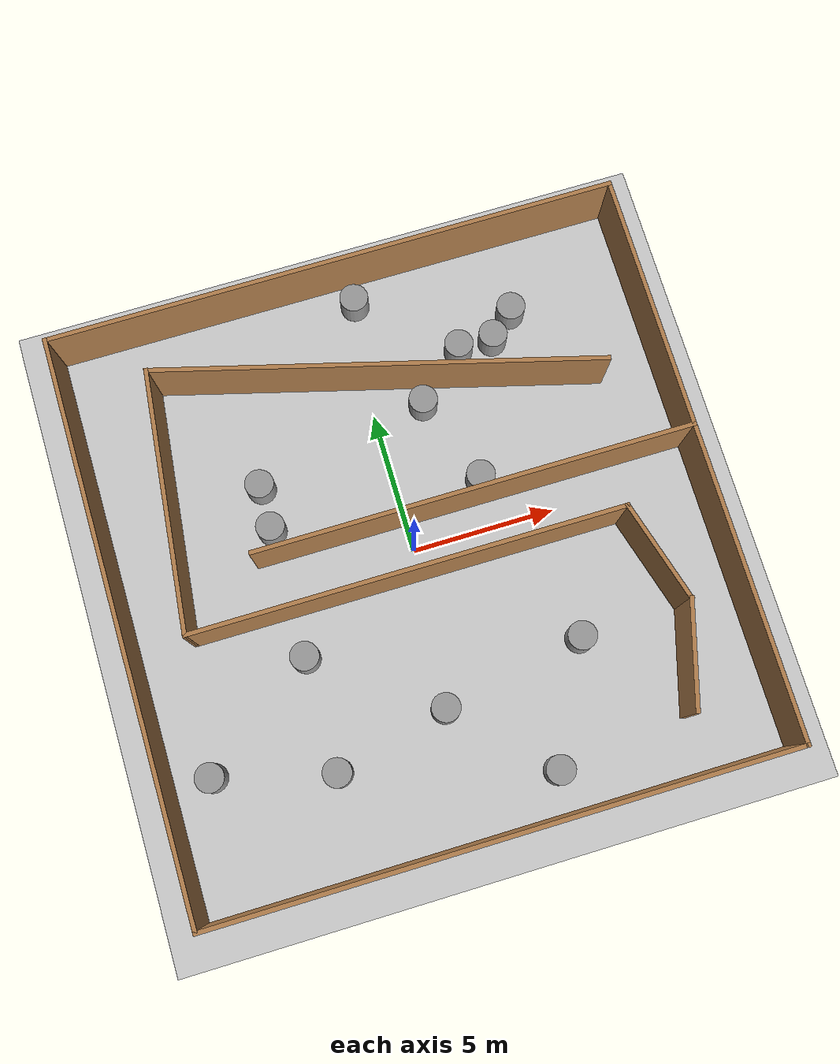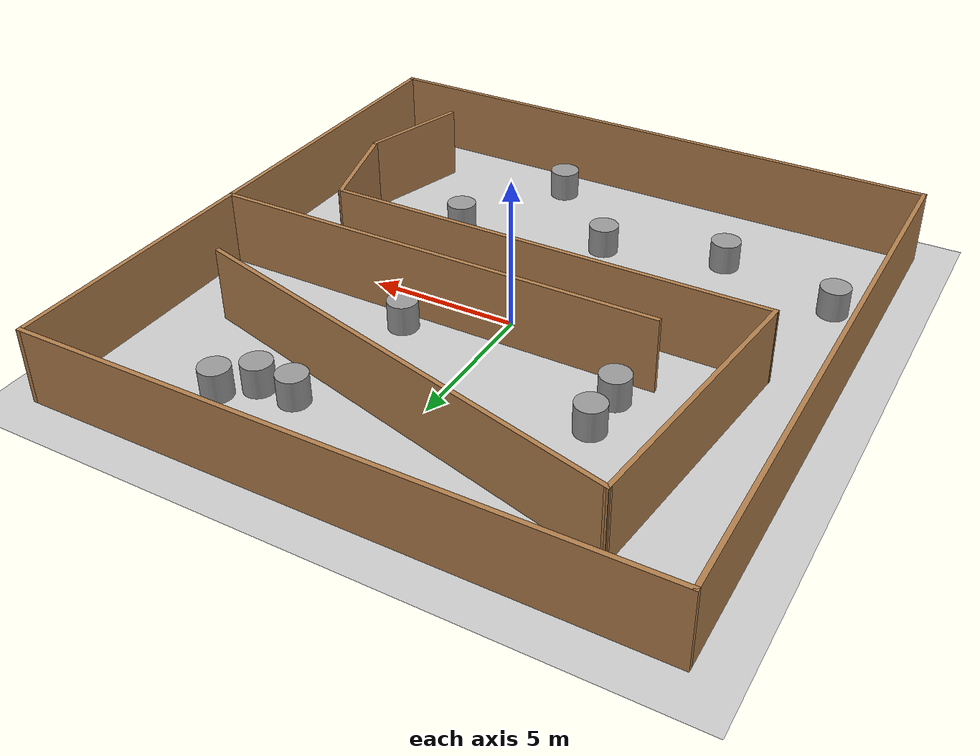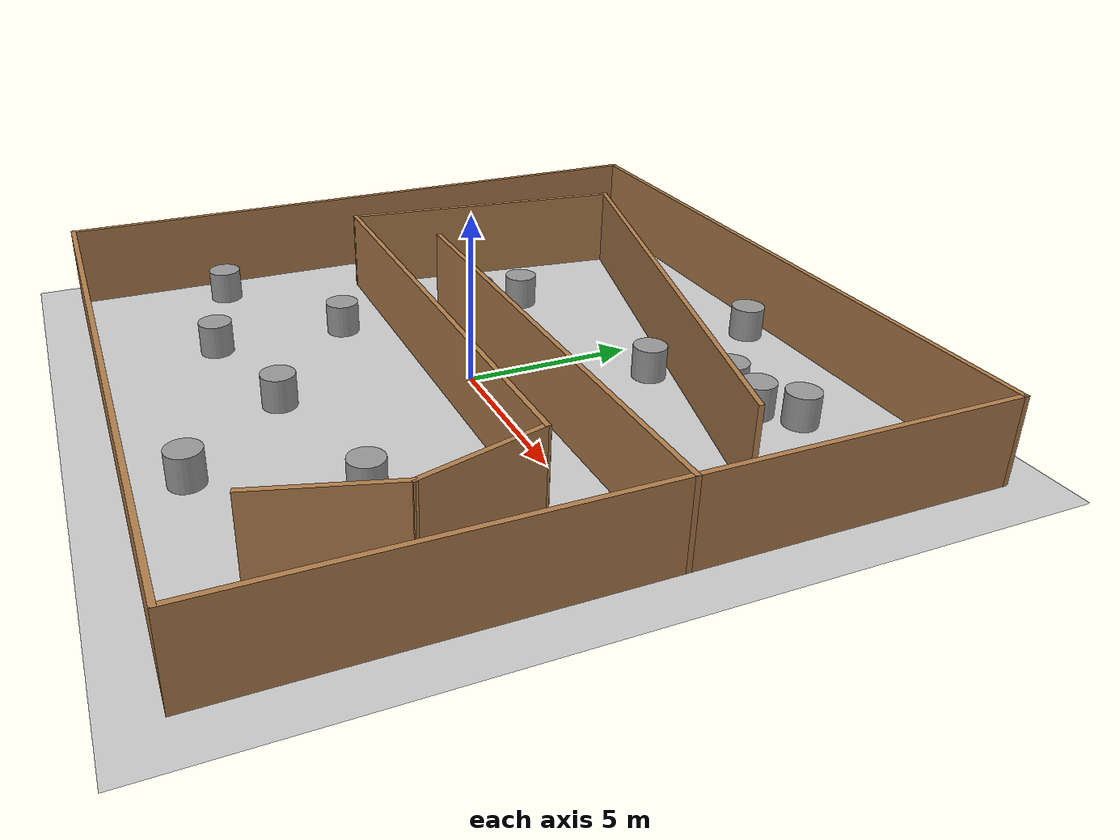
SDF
<sdf version="1.6">
 <world name="default">
  <light name="sun" type="directional">
   <pose>0 0 10 0 -0 0</pose>
   <diffuse>0.8 0.8 0.8 1</diffuse>
   <specular>0.2 0.2 0.2 1</specular>
   <attenuation>
    <range>1000</range>
    <constant>0.9</constant>
    <linear>0.01</linear>
    <quadratic>0.001</quadratic>
   </attenuation>
   <direction>-0.5 0.1 -0.9</direction>
  </light>
  <model name="ground_plane">
   <static>1</static>
   <link name="link">
    <collision name="collision">
     <geometry><plane><normal>0 0 1</normal><size>100 100</size></plane></geometry>
     <surface>
      <contact><collide_bitmask>65535</collide_bitmask></contact>
      <friction><ode><mu>100</mu><mu2>50</mu2></ode></friction>
     </surface>
    </collision>
    <visual name="visual">
     <cast_shadows>0</cast_shadows>
     <geometry><plane><normal>0 0 1</normal><size>100 100</size></plane></geometry>
     <material>
      <script><uri>file://media/materials/scripts/gazebo.material</uri><name>Gazebo/Grey</name></script>
     </material>
    </visual>
   </link>
  </model>
  <gravity>0 0 -9.8</gravity>
  <magnetic_field>6e-06 2.3e-05 -4.2e-05</magnetic_field>
  <atmosphere type="adiabatic"/>
  <physics name="default_physics" default="0" type="ode">
   <max_step_size>0.001</max_step_size>
   <real_time_factor>1</real_time_factor>
   <real_time_update_rate>1000</real_time_update_rate>
  </physics>
  <scene><ambient>0.4 0.4 0.4 1</ambient><background>0.7 0.7 0.7 1</background><shadows>1</shadows></scene>
  <audio><device>default</device></audio>
  <spherical_coordinates>
   <surface_model>EARTH_WGS84</surface_model>
   <latitude_deg>0</latitude_deg>
   <longitude_deg>0</longitude_deg>
   <elevation>0</elevation>
   <heading_deg>0</heading_deg>
  </spherical_coordinates>
  <model name="maze_wall">
   <link name="Wall_0">
    <collision name="Wall_0_Collision">
     <geometry><box><size>20.15 0.15 2.5</size></box></geometry>
     <pose>0 0 1.25 0 -0 0</pose>
    </collision>
    <visual name="Wall_0_Visual">
     <pose>0 0 1.25 0 -0 0</pose>
     <geometry><box><size>20.15 0.15 2.5</size></box></geometry>
     <material>
      <script><uri>file://media/materials/scripts/gazebo.material</uri><name>Gazebo/Wood</name></script>
      <ambient>1 1 1 1</ambient>
     </material>
     <meta><layer>0</layer></meta>
    </visual>
    <pose>0 -10 0 0 -0 0</pose>
   </link>
   <link name="Wall_1">
    <collision name="Wall_1_Collision">
     <geometry><box><size>20.15 0.15 2.5</size></box></geometry>
     <pose>0 0 1.25 0 -0 0</pose>
    </collision>
    <visual name="Wall_1_Visual">
     <pose>0 0 1.25 0 -0 0</pose>
     <geometry><box><size>20.15 0.15 2.5</size></box></geometry>
     <material>
      <script><uri>file://media/materials/scripts/gazebo.material</uri><name>Gazebo/Wood</name></script>
      <ambient>1 1 1 1</ambient>
     </material>
     <meta><layer>0</layer></meta>
    </visual>
    <pose>10 0 0 0 -0 1.5708</pose>
   </link>
   <link name="Wall_11">
    <collision name="Wall_11_Collision">
     <geometry><box><size>3.79006 0.15 2.5</size></box></geometry>
     <pose>0 0 1.25 0 -0 0</pose>
    </collision>
    <visual name="Wall_11_Visual">
     <pose>0 0 1.25 0 -0 0</pose>
     <geometry><box><size>3.79006 0.15 2.5</size></box></geometry>
     <material>
      <script><uri>file://media/materials/scripts/gazebo.material</uri><name>Gazebo/Wood</name></script>
      <ambient>1 1 1 1</ambient>
     </material>
     <meta><layer>0</layer></meta>
    </visual>
    <pose>7.5 -6.25 0 0 -0 -1.8491</pose>
   </link>
   <link name="Wall_14">
    <collision name="Wall_14_Collision">
     <geometry><box><size>9.20538 0.15 2.5</size></box></geometry>
     <pose>0 0 1.25 0 -0 0</pose>
    </collision>
    <visual name="Wall_14_Visual">
     <pose>0 0 1.25 0 -0 0</pose>
     <geometry><box><size>9.20538 0.15 2.5</size></box></geometry>
     <material>
      <script><uri>file://media/materials/scripts/gazebo.material</uri><name>Gazebo/Wood</name></script>
      <ambient>1 1 1 1</ambient>
     </material>
     <meta><layer>0</layer></meta>
    </visual>
    <pose>-7.5 3.5 0 0 -0 1.46014</pose>
   </link>
   <link name="Wall_16">
    <collision name="Wall_16_Collision">
     <geometry><box><size>15.6742 0.15 2.5</size></box></geometry>
     <pose>0 0 1.25 0 -0 0</pose>
    </collision>
    <visual name="Wall_16_Visual">
     <pose>0 0 1.25 0 -0 0</pose>
     <geometry><box><size>15.6742 0.15 2.5</size></box></geometry>
     <material>
      <script><uri>file://media/materials/scripts/gazebo.material</uri><name>Gazebo/Wood</name></script>
      <ambient>1 1 1 1</ambient>
     </material>
     <meta><layer>0</layer></meta>
    </visual>
    <pose>0.5 6 0 0 -0 -0.260602</pose>
   </link>
   <link name="Wall_2">
    <collision name="Wall_2_Collision">
     <geometry><box><size>20.15 0.15 2.5</size></box></geometry>
     <pose>0 0 1.25 0 -0 0</pose>
    </collision>
    <visual name="Wall_2_Visual">
     <pose>0 0 1.25 0 -0 0</pose>
     <geometry><box><size>20.15 0.15 2.5</size></box></geometry>
     <material>
      <script><uri>file://media/materials/scripts/gazebo.material</uri><name>Gazebo/Wood</name></script>
      <ambient>1 1 1 1</ambient>
     </material>
     <meta><layer>0</layer></meta>
    </visual>
    <pose>0 10 0 0 -0 3.14159</pose>
   </link>
   <link name="Wall_3">
    <collision name="Wall_3_Collision">
     <geometry><box><size>20.15 0.15 2.5</size></box></geometry>
     <pose>0 0 1.25 0 -0 0</pose>
    </collision>
    <visual name="Wall_3_Visual">
     <pose>0 0 1.25 0 -0 0</pose>
     <geometry><box><size>20.15 0.15 2.5</size></box></geometry>
     <material>
      <script><uri>file://media/materials/scripts/gazebo.material</uri><name>Gazebo/Wood</name></script>
      <ambient>1 1 1 1</ambient>
     </material>
     <meta><layer>0</layer></meta>
    </visual>
    <pose>-10 0 0 0 -0 -1.5708</pose>
   </link>
   <link name="Wall_6">
    <collision name="Wall_6_Collision">
     <geometry><box><size>15.4 0.15 2.5</size></box></geometry>
     <pose>0 0 1.25 0 -0 0</pose>
    </collision>
    <visual name="Wall_6_Visual">
     <pose>0 0 1.25 0 -0 0</pose>
     <geometry><box><size>15.4 0.15 2.5</size></box></geometry>
     <material>
      <script><uri>file://media/materials/scripts/gazebo.material</uri><name>Gazebo/Wood</name></script>
      <ambient>1 1 1 1</ambient>
     </material>
     <meta><layer>0</layer></meta>
    </visual>
    <pose>2.375 1 0 0 -0 0</pose>
   </link>
   <link name="Wall_8">
    <collision name="Wall_8_Collision">
     <geometry><box><size>15.15 0.15 2.5</size></box></geometry>
     <pose>0 0 1.25 0 -0 0</pose>
    </collision>
    <visual name="Wall_8_Visual">
     <pose>0 0 1.25 0 -0 0</pose>
     <geometry><box><size>15.15 0.15 2.5</size></box></geometry>
     <material>
      <script><uri>file://media/materials/scripts/gazebo.material</uri><name>Gazebo/Wood</name></script>
      <ambient>1 1 1 1</ambient>
     </material>
     <meta><layer>0</layer></meta>
    </visual>
    <pose>-0.5 -1 0 0 -0 0</pose>
   </link>
   <link name="Wall_9">
    <collision name="Wall_9_Collision">
     <geometry><box><size>3.79006 0.15 2.5</size></box></geometry>
     <pose>0 0 1.25 0 -0 0</pose>
    </collision>
    <visual name="Wall_9_Visual">
     <pose>0 0 1.25 0 -0 0</pose>
     <geometry><box><size>3.79006 0.15 2.5</size></box></geometry>
     <material>
      <script><uri>file://media/materials/scripts/gazebo.material</uri><name>Gazebo/Wood</name></script>
      <ambient>1 1 1 1</ambient>
     </material>
     <meta><layer>0</layer></meta>
    </visual>
    <pose>7.5 -2.75 0 0 -0 -1.2925</pose>
   </link>
   <static>1</static>
  </model>
  <model name="unit_cylinder">
   <pose>-4.46335 3.56193 0.499992 -3e-06 3e-06 0</pose>
   <link name="link">
    <inertial>
     <mass>1</mass>
     <inertia><ixx>0.145833</ixx><ixy>0</ixy><ixz>0</ixz><iyy>0.145833</iyy><iyz>0</iyz><izz>0.125</izz></inertia>
    </inertial>
    <collision name="collision">
     <geometry><cylinder><radius>0.5</radius><length>1</length></cylinder></geometry>
    </collision>
    <visual name="visual">
     <geometry><cylinder><radius>0.5</radius><length>1</length></cylinder></geometry>
     <material>
      <script><name>Gazebo/Grey</name><uri>file://media/materials/scripts/gazebo.material</uri></script>
     </material>
    </visual>
   </link>
  </model>
  <model name="unit_cylinder_0">
   <pose>-4.49743 2.03239 0.499998 3e-06 -3e-06 0</pose>
   <link name="link">
    <inertial>
     <mass>1</mass>
     <inertia><ixx>0.145833</ixx><ixy>0</ixy><ixz>0</ixz><iyy>0.145833</iyy><iyz>0</iyz><izz>0.125</izz></inertia>
    </inertial>
    <collision name="collision">
     <geometry><cylinder><radius>0.5</radius><length>1</length></cylinder></geometry>
    </collision>
    <visual name="visual">
     <geometry><cylinder><radius>0.5</radius><length>1</length></cylinder></geometry>
     <material>
      <script><name>Gazebo/Grey</name><uri>file://media/materials/scripts/gazebo.material</uri></script>
     </material>
    </visual>
   </link>
  </model>
  <model name="unit_cylinder_1">
   <pose>1.76198 4.86027 0.499992 -3e-06 3e-06 0</pose>
   <link name="link">
    <inertial>
     <mass>1</mass>
     <inertia><ixx>0.145833</ixx><ixy>0</ixy><ixz>0</ixz><iyy>0.145833</iyy><iyz>0</iyz><izz>0.125</izz></inertia>
    </inertial>
    <collision name="collision">
     <geometry><cylinder><radius>0.5</radius><length>1</length></cylinder></geometry>
    </collision>
    <visual name="visual">
     <geometry><cylinder><radius>0.5</radius><length>1</length></cylinder></geometry>
     <material>
      <script><name>Gazebo/Grey</name><uri>file://media/materials/scripts/gazebo.material</uri></script>
     </material>
    </visual>
   </link>
  </model>
  <model name="unit_cylinder_2">
   <pose>2.88461 1.73591 0.499998 3e-06 -3e-06 0</pose>
   <link name="link">
    <inertial>
     <mass>1</mass>
     <inertia><ixx>0.145833</ixx><ixy>0</ixy><ixz>0</ixz><iyy>0.145833</iyy><iyz>0</iyz><izz>0.125</izz></inertia>
    </inertial>
    <collision name="collision">
     <geometry><cylinder><radius>0.5</radius><length>1</length></cylinder></geometry>
    </collision>
    <visual name="visual">
     <geometry><cylinder><radius>0.5</radius><length>1</length></cylinder></geometry>
     <material>
      <script><name>Gazebo/Grey</name><uri>file://media/materials/scripts/gazebo.material</uri></script>
     </material>
    </visual>
   </link>
  </model>
  <model name="unit_cylinder_3">
   <pose>0.490694 9.1036 0.499992 -3e-06 3e-06 0</pose>
   <link name="link">
    <inertial>
     <mass>1</mass>
     <inertia><ixx>0.145833</ixx><ixy>0</ixy><ixz>0</ixz><iyy>0.145833</iyy><iyz>0</iyz><izz>0.125</izz></inertia>
    </inertial>
    <collision name="collision">
     <geometry><cylinder><radius>0.5</radius><length>1</length></cylinder></geometry>
    </collision>
    <visual name="visual">
     <geometry><cylinder><radius>0.5</radius><length>1</length></cylinder></geometry>
     <material>
      <script><name>Gazebo/Grey</name><uri>file://media/materials/scripts/gazebo.material</uri></script>
     </material>
    </visual>
   </link>
  </model>
  <model name="unit_cylinder_4">
   <pose>3.53727 6.44478 0.499998 3e-06 -3e-06 0</pose>
   <link name="link">
    <inertial>
     <mass>1</mass>
     <inertia><ixx>0.145833</ixx><ixy>0</ixy><ixz>0</ixz><iyy>0.145833</iyy><iyz>0</iyz><izz>0.125</izz></inertia>
    </inertial>
    <collision name="collision">
     <geometry><cylinder><radius>0.5</radius><length>1</length></cylinder></geometry>
    </collision>
    <visual name="visual">
     <geometry><cylinder><radius>0.5</radius><length>1</length></cylinder></geometry>
     <material>
      <script><name>Gazebo/Grey</name><uri>file://media/materials/scripts/gazebo.material</uri></script>
     </material>
    </visual>
   </link>
  </model>
  <model name="unit_cylinder_5">
   <pose>4.79053 6.45224 0.499992 -3e-06 -4e-06 -0</pose>
   <link name="link">
    <inertial>
     <mass>1</mass>
     <inertia><ixx>0.145833</ixx><ixy>0</ixy><ixz>0</ixz><iyy>0.145833</iyy><iyz>0</iyz><izz>0.125</izz></inertia>
    </inertial>
    <collision name="collision">
     <geometry><cylinder><radius>0.5</radius><length>1</length></cylinder></geometry>
    </collision>
    <visual name="visual">
     <geometry><cylinder><radius>0.5</radius><length>1</length></cylinder></geometry>
     <material>
      <script><name>Gazebo/Grey</name><uri>file://media/materials/scripts/gazebo.material</uri></script>
     </material>
    </visual>
   </link>
  </model>
  <model name="unit_cylinder_6">
   <pose>5.68897 7.24419 0.499998 3e-06 -4e-06 0</pose>
   <link name="link">
    <inertial>
     <mass>1</mass>
     <inertia><ixx>0.145833</ixx><ixy>0</ixy><ixz>0</ixz><iyy>0.145833</iyy><iyz>0</iyz><izz>0.125</izz></inertia>
    </inertial>
    <collision name="collision">
     <geometry><cylinder><radius>0.5</radius><length>1</length></cylinder></geometry>
    </collision>
    <visual name="visual">
     <geometry><cylinder><radius>0.5</radius><length>1</length></cylinder></geometry>
     <material>
      <script><name>Gazebo/Grey</name><uri>file://media/materials/scripts/gazebo.material</uri></script>
     </material>
    </visual>
   </link>
  </model>
  <model name="unit_cylinder_7">
   <pose>2.45565 -8.5181 0.499992 -3e-06 -4e-06 -0</pose>
   <link name="link">
    <inertial>
     <mass>1</mass>
     <inertia><ixx>0.145833</ixx><ixy>0</ixy><ixz>0</ixz><iyy>0.145833</iyy><iyz>0</iyz><izz>0.125</izz></inertia>
    </inertial>
    <collision name="collision">
     <geometry><cylinder><radius>0.5</radius><length>1</length></cylinder></geometry>
    </collision>
    <visual name="visual">
     <geometry><cylinder><radius>0.5</radius><length>1</length></cylinder></geometry>
     <material>
      <script><name>Gazebo/Grey</name><uri>file://media/materials/scripts/gazebo.material</uri></script>
     </material>
    </visual>
   </link>
  </model>
  <model name="unit_cylinder_8">
   <pose>-4.56985 -2.54821 0.499998 4e-06 -4e-06 0</pose>
   <link name="link">
    <inertial>
     <mass>1</mass>
     <inertia><ixx>0.145833</ixx><ixy>0</ixy><ixz>0</ixz><iyy>0.145833</iyy><iyz>0</iyz><izz>0.125</izz></inertia>
    </inertial>
    <collision name="collision">
     <geometry><cylinder><radius>0.5</radius><length>1</length></cylinder></geometry>
    </collision>
    <visual name="visual">
     <geometry><cylinder><radius>0.5</radius><length>1</length></cylinder></geometry>
     <material>
      <script><name>Gazebo/Grey</name><uri>file://media/materials/scripts/gazebo.material</uri></script>
     </material>
    </visual>
   </link>
  </model>
  <model name="unit_cylinder_9">
   <pose>-8.60461 -5.48846 0.499992 -3e-06 4e-06 0</pose>
   <link name="link">
    <inertial>
     <mass>1</mass>
     <inertia><ixx>0.145833</ixx><ixy>0</ixy><ixz>0</ixz><iyy>0.145833</iyy><iyz>0</iyz><izz>0.125</izz></inertia>
    </inertial>
    <collision name="collision">
     <geometry><cylinder><radius>0.5</radius><length>1</length></cylinder></geometry>
    </collision>
    <visual name="visual">
     <geometry><cylinder><radius>0.5</radius><length>1</length></cylinder></geometry>
     <material>
      <script><name>Gazebo/Grey</name><uri>file://media/materials/scripts/gazebo.material</uri></script>
     </material>
    </visual>
   </link>
  </model>
  <model name="unit_cylinder_10">
   <pose>-0.555353 -5.51329 0.499993 -3e-06 -4e-06 -0</pose>
   <link name="link">
    <inertial>
     <mass>1</mass>
     <inertia><ixx>0.145833</ixx><ixy>0</ixy><ixz>0</ixz><iyy>0.145833</iyy><iyz>0</iyz><izz>0.125</izz></inertia>
    </inertial>
    <collision name="collision">
     <geometry><cylinder><radius>0.5</radius><length>1</length></cylinder></geometry>
    </collision>
    <visual name="visual">
     <geometry><cylinder><radius>0.5</radius><length>1</length></cylinder></geometry>
     <material>
      <script><name>Gazebo/Grey</name><uri>file://media/materials/scripts/gazebo.material</uri></script>
     </material>
    </visual>
   </link>
  </model>
  <model name="unit_cylinder_11">
   <pose>4.49644 -4.52397 0.499997 3e-06 4e-06 -0</pose>
   <link name="link">
    <inertial>
     <mass>1</mass>
     <inertia><ixx>0.145833</ixx><ixy>0</ixy><ixz>0</ixz><iyy>0.145833</iyy><iyz>0</iyz><izz>0.125</izz></inertia>
    </inertial>
    <collision name="collision">
     <geometry><cylinder><radius>0.5</radius><length>1</length></cylinder></geometry>
    </collision>
    <visual name="visual">
     <geometry><cylinder><radius>0.5</radius><length>1</length></cylinder></geometry>
     <material>
      <script><name>Gazebo/Grey</name><uri>file://media/materials/scripts/gazebo.material</uri></script>
     </material>
    </visual>
   </link>
  </model>
  <model name="unit_cylinder_12">
   <pose>-4.57028 -6.52188 0.499993 -3e-06 -4e-06 -0</pose>
   <link name="link">
    <inertial>
     <mass>1</mass>
     <inertia><ixx>0.145833</ixx><ixy>0</ixy><ixz>0</ixz><iyy>0.145833</iyy><iyz>0</iyz><izz>0.125</izz></inertia>
    </inertial>
    <collision name="collision">
     <geometry><cylinder><radius>0.5</radius><length>1</length></cylinder></geometry>
    </collision>
    <visual name="visual">
     <geometry><cylinder><radius>0.5</radius><length>1</length></cylinder></geometry>
     <material>
      <script><name>Gazebo/Grey</name><uri>file://media/materials/scripts/gazebo.material</uri></script>
     </material>
    </visual>
   </link>
  </model>
 </world>
</sdf>
